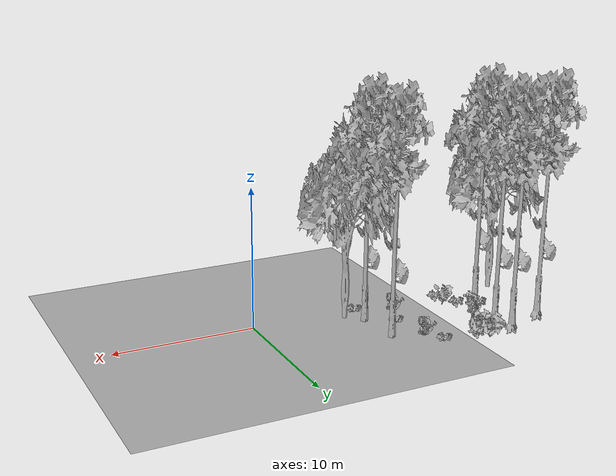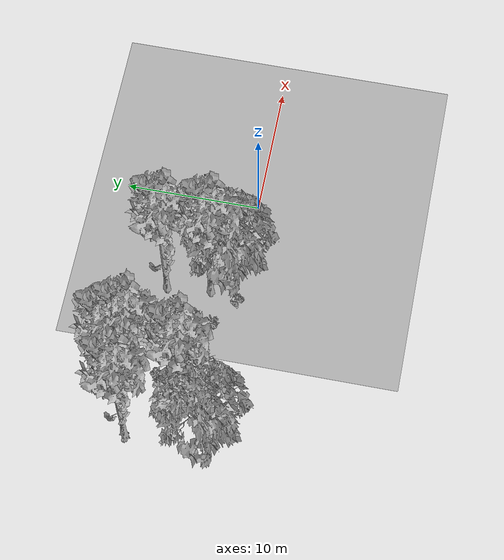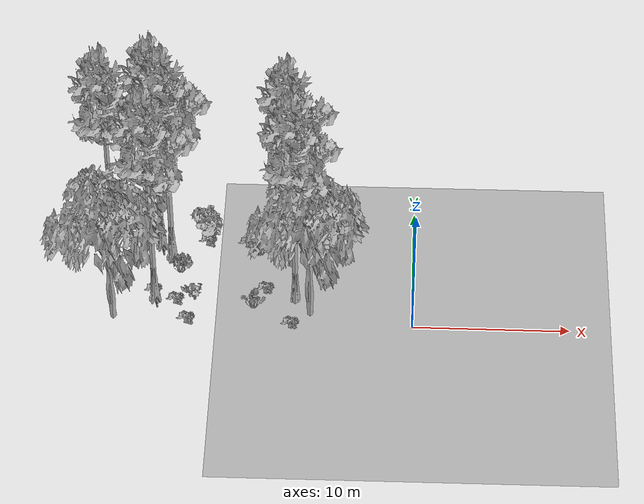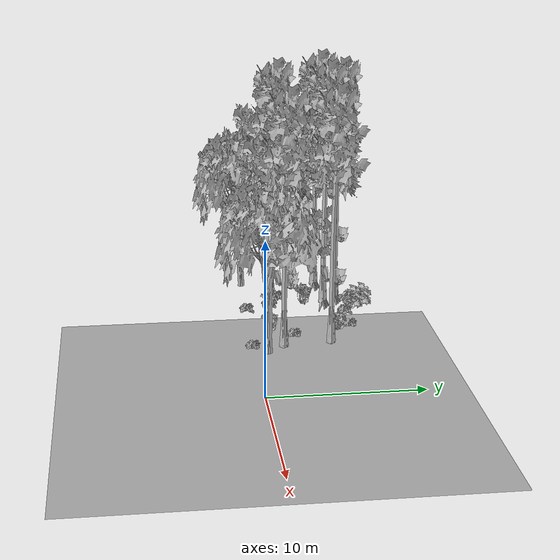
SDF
<sdf version="1.7">
 <world name="default">
  <model name="ground_plane">
   <static>1</static>
   <link name="link">
    <collision name="collision">
     <pose>-50 0 0 0 -0 0</pose>
     <geometry><plane><normal>0 0 1</normal><size>80 80</size></plane></geometry>
     <surface><contact><ode><min_depth>0.01</min_depth><max_vel>0</max_vel></ode></contact></surface>
    </collision>
    <visual name="grass">
     <cast_shadows>0</cast_shadows>
     <geometry>
      <mesh>
       <scale>0.46714285714285714 0.46714285714285714 0.1</scale>
       <uri>file://grass_plane/meshes/grass_plane.dae</uri>
      </mesh>
     </geometry>
    </visual>
   </link>
  </model>
  <model name="Tree 18">
   <static>1</static>
   <pose>-19.255456930846012 0.3580390568446177 0 1.57079 -0 0</pose>
   <link name="link">
    <collision name="collision">
     <geometry><mesh><scale>3.5 5 3.5</scale><uri>model://tree_2/meshes/tree_2.obj</uri></mesh></geometry>
    </collision>
    <visual name="visual">
     <geometry><mesh><scale>3.5 5 3.5</scale><uri>model://tree_2/meshes/tree_2.obj</uri></mesh></geometry>
    </visual>
   </link>
  </model>
  <model name="Tree 37">
   <static>1</static>
   <pose>-7.892119253496865 5.312296553941579 0 1.57079 -0 0</pose>
   <link name="link">
    <collision name="collision">
     <geometry><mesh><scale>3.5 5 3.5</scale><uri>model://tree_9/meshes/tree_9.obj</uri></mesh></geometry>
    </collision>
    <visual name="visual">
     <geometry><mesh><scale>3.5 5 3.5</scale><uri>model://tree_9/meshes/tree_9.obj</uri></mesh></geometry>
    </visual>
   </link>
  </model>
  <model name="Tree 175">
   <static>1</static>
   <pose>-7.563753588971178 2.1040092854238495 0 1.57079 -0 0</pose>
   <link name="link">
    <collision name="collision">
     <geometry><mesh><scale>3.5 5 3.5</scale><uri>model://tree_9/meshes/tree_9.obj</uri></mesh></geometry>
    </collision>
    <visual name="visual">
     <geometry><mesh><scale>3.5 5 3.5</scale><uri>model://tree_9/meshes/tree_9.obj</uri></mesh></geometry>
    </visual>
   </link>
  </model>
  <model name="Tree 207">
   <static>1</static>
   <pose>-6.672015179035903 0.9694824223845018 0 1.57079 -0 0</pose>
   <link name="link">
    <collision name="collision">
     <geometry><mesh><scale>3.5 5 3.5</scale><uri>model://tree_2/meshes/tree_2.obj</uri></mesh></geometry>
    </collision>
    <visual name="visual">
     <geometry><mesh><scale>3.5 5 3.5</scale><uri>model://tree_2/meshes/tree_2.obj</uri></mesh></geometry>
    </visual>
   </link>
  </model>
  <model name="Tree 248">
   <static>1</static>
   <pose>-16.539129121606507 6.989564903015108 0 1.57079 -0 0</pose>
   <link name="link">
    <collision name="collision">
     <geometry><mesh><scale>3.5 5 3.5</scale><uri>model://tree_9/meshes/tree_9.obj</uri></mesh></geometry>
    </collision>
    <visual name="visual">
     <geometry><mesh><scale>3.5 5 3.5</scale><uri>model://tree_9/meshes/tree_9.obj</uri></mesh></geometry>
    </visual>
   </link>
  </model>
  <model name="Tree 274">
   <static>1</static>
   <pose>-16.642777546276 2.3080700187895076 0 1.57079 -0 0</pose>
   <link name="link">
    <collision name="collision">
     <geometry><mesh><scale>3.5 5 3.5</scale><uri>model://tree_9/meshes/tree_9.obj</uri></mesh></geometry>
    </collision>
    <visual name="visual">
     <geometry><mesh><scale>3.5 5 3.5</scale><uri>model://tree_9/meshes/tree_9.obj</uri></mesh></geometry>
    </visual>
   </link>
  </model>
  <model name="Tree 459">
   <static>1</static>
   <pose>-15.783109543213712 6.00736953525935 0 1.57079 -0 0</pose>
   <link name="link">
    <collision name="collision">
     <geometry><mesh><scale>3.5 5 3.5</scale><uri>model://tree_9/meshes/tree_9.obj</uri></mesh></geometry>
    </collision>
    <visual name="visual">
     <geometry><mesh><scale>3.5 5 3.5</scale><uri>model://tree_9/meshes/tree_9.obj</uri></mesh></geometry>
    </visual>
   </link>
  </model>
  <model name="Tree 628">
   <static>1</static>
   <pose>-19.528178435553837 5.882567232968242 0 1.57079 -0 0</pose>
   <link name="link">
    <collision name="collision">
     <geometry><mesh><scale>3.5 5 3.5</scale><uri>model://tree_9/meshes/tree_9.obj</uri></mesh></geometry>
    </collision>
    <visual name="visual">
     <geometry><mesh><scale>3.5 5 3.5</scale><uri>model://tree_9/meshes/tree_9.obj</uri></mesh></geometry>
    </visual>
   </link>
  </model>
  <model name="Bush 23">
   <static>1</static>
   <pose>-14.066360384090249 1.9973744926889765 0 1.57079 -0 0</pose>
   <link name="link">
    <collision name="collision">
     <geometry><mesh><scale>2 2 2</scale><uri>model://bush_0/meshes/bush_0.obj</uri></mesh></geometry>
     <surface><contact><collide_without_contact>false</collide_without_contact></contact></surface>
    </collision>
    <visual name="visual">
     <geometry><mesh><scale>2 2 2</scale><uri>model://bush_0/meshes/bush_0.obj</uri></mesh></geometry>
    </visual>
   </link>
  </model>
  <model name="Bush 98">
   <static>1</static>
   <pose>-9.522795112355876 3.0536850580935564 0 1.57079 -0 0</pose>
   <link name="link">
    <collision name="collision">
     <geometry><mesh><scale>2 2 2</scale><uri>model://bush_2/meshes/bush_2.obj</uri></mesh></geometry>
     <surface><contact><collide_without_contact>false</collide_without_contact></contact></surface>
    </collision>
    <visual name="visual">
     <geometry><mesh><scale>2 2 2</scale><uri>model://bush_2/meshes/bush_2.obj</uri></mesh></geometry>
    </visual>
   </link>
  </model>
  <model name="Bush 125">
   <static>1</static>
   <pose>-15.126424895645815 4.401139598802587 0 1.57079 -0 0</pose>
   <link name="link">
    <collision name="collision">
     <geometry><mesh><scale>2 2 2</scale><uri>model://bush_4/meshes/bush_4.obj</uri></mesh></geometry>
     <surface><contact><collide_without_contact>false</collide_without_contact></contact></surface>
    </collision>
    <visual name="visual">
     <geometry><mesh><scale>2 2 2</scale><uri>model://bush_4/meshes/bush_4.obj</uri></mesh></geometry>
    </visual>
   </link>
  </model>
  <model name="Bush 152">
   <static>1</static>
   <pose>-10.89105026490714 7.118431934592309 0 1.57079 -0 0</pose>
   <link name="link">
    <collision name="collision">
     <geometry><mesh><scale>2 2 2</scale><uri>model://bush_2/meshes/bush_2.obj</uri></mesh></geometry>
     <surface><contact><collide_without_contact>false</collide_without_contact></contact></surface>
    </collision>
    <visual name="visual">
     <geometry><mesh><scale>2 2 2</scale><uri>model://bush_2/meshes/bush_2.obj</uri></mesh></geometry>
    </visual>
   </link>
  </model>
  <model name="Bush 161">
   <static>1</static>
   <pose>-14.496441043622536 0.32449319185488434 0 1.57079 -0 0</pose>
   <link name="link">
    <collision name="collision">
     <geometry><mesh><scale>2 2 2</scale><uri>model://bush_2/meshes/bush_2.obj</uri></mesh></geometry>
     <surface><contact><collide_without_contact>false</collide_without_contact></contact></surface>
    </collision>
    <visual name="visual">
     <geometry><mesh><scale>2 2 2</scale><uri>model://bush_2/meshes/bush_2.obj</uri></mesh></geometry>
    </visual>
   </link>
  </model>
  <model name="Bush 279">
   <static>1</static>
   <pose>-14.879798271863699 4.546364981578208 0 1.57079 -0 0</pose>
   <link name="link">
    <collision name="collision">
     <geometry><mesh><scale>2 2 2</scale><uri>model://bush_5/meshes/bush_5.obj</uri></mesh></geometry>
     <surface><contact><collide_without_contact>false</collide_without_contact></contact></surface>
    </collision>
    <visual name="visual">
     <geometry><mesh><scale>2 2 2</scale><uri>model://bush_5/meshes/bush_5.obj</uri></mesh></geometry>
    </visual>
   </link>
  </model>
  <model name="Bush 322">
   <static>1</static>
   <pose>-10.05297344630868 6.071813382118954 0 1.57079 -0 0</pose>
   <link name="link">
    <collision name="collision">
     <geometry><mesh><scale>2 2 2</scale><uri>model://bush_4/meshes/bush_4.obj</uri></mesh></geometry>
     <surface><contact><collide_without_contact>false</collide_without_contact></contact></surface>
    </collision>
    <visual name="visual">
     <geometry><mesh><scale>2 2 2</scale><uri>model://bush_4/meshes/bush_4.obj</uri></mesh></geometry>
    </visual>
   </link>
  </model>
  <model name="Bush 326">
   <static>1</static>
   <pose>-15.282039288823878 1.9832531854406383 0 1.57079 -0 0</pose>
   <link name="link">
    <collision name="collision">
     <geometry><mesh><scale>2 2 2</scale><uri>model://bush_2/meshes/bush_2.obj</uri></mesh></geometry>
     <surface><contact><collide_without_contact>false</collide_without_contact></contact></surface>
    </collision>
    <visual name="visual">
     <geometry><mesh><scale>2 2 2</scale><uri>model://bush_2/meshes/bush_2.obj</uri></mesh></geometry>
    </visual>
   </link>
  </model>
  <model name="Bush 337">
   <static>1</static>
   <pose>-13.819889351676878 8.231959690633197 0 1.57079 -0 0</pose>
   <link name="link">
    <collision name="collision">
     <geometry><mesh><scale>2 2 2</scale><uri>model://bush_1/meshes/bush_1.obj</uri></mesh></geometry>
     <surface><contact><collide_without_contact>false</collide_without_contact></contact></surface>
    </collision>
    <visual name="visual">
     <geometry><mesh><scale>2 2 2</scale><uri>model://bush_1/meshes/bush_1.obj</uri></mesh></geometry>
    </visual>
   </link>
  </model>
  <model name="Bush 353">
   <static>1</static>
   <pose>-16.7535208121613 2.7249904701946406 0 1.57079 -0 0</pose>
   <link name="link">
    <collision name="collision">
     <geometry><mesh><scale>2 2 2</scale><uri>model://bush_2/meshes/bush_2.obj</uri></mesh></geometry>
     <surface><contact><collide_without_contact>false</collide_without_contact></contact></surface>
    </collision>
    <visual name="visual">
     <geometry><mesh><scale>2 2 2</scale><uri>model://bush_2/meshes/bush_2.obj</uri></mesh></geometry>
    </visual>
   </link>
  </model>
  <model name="Bush 354">
   <static>1</static>
   <pose>-13.480861863542717 7.201963769452888 0 1.57079 -0 0</pose>
   <link name="link">
    <collision name="collision">
     <geometry><mesh><scale>2 2 2</scale><uri>model://bush_2/meshes/bush_2.obj</uri></mesh></geometry>
     <surface><contact><collide_without_contact>false</collide_without_contact></contact></surface>
    </collision>
    <visual name="visual">
     <geometry><mesh><scale>2 2 2</scale><uri>model://bush_2/meshes/bush_2.obj</uri></mesh></geometry>
    </visual>
   </link>
  </model>
  <model name="Bush 412">
   <static>1</static>
   <pose>-13.391465774383413 7.551599216716021 0 1.57079 -0 0</pose>
   <link name="link">
    <collision name="collision">
     <geometry><mesh><scale>2 2 2</scale><uri>model://bush_1/meshes/bush_1.obj</uri></mesh></geometry>
     <surface><contact><collide_without_contact>false</collide_without_contact></contact></surface>
    </collision>
    <visual name="visual">
     <geometry><mesh><scale>2 2 2</scale><uri>model://bush_1/meshes/bush_1.obj</uri></mesh></geometry>
    </visual>
   </link>
  </model>
  <model name="Bush 583">
   <static>1</static>
   <pose>-7.814127151382696 0.07751560149199577 0 1.57079 -0 0</pose>
   <link name="link">
    <collision name="collision">
     <geometry><mesh><scale>2 2 2</scale><uri>model://bush_2/meshes/bush_2.obj</uri></mesh></geometry>
     <surface><contact><collide_without_contact>false</collide_without_contact></contact></surface>
    </collision>
    <visual name="visual">
     <geometry><mesh><scale>2 2 2</scale><uri>model://bush_2/meshes/bush_2.obj</uri></mesh></geometry>
    </visual>
   </link>
  </model>
  <model name="Bush 609">
   <static>1</static>
   <pose>-10.273060932089038 1.4208808025082575 0 1.57079 -0 0</pose>
   <link name="link">
    <collision name="collision">
     <geometry><mesh><scale>2 2 2</scale><uri>model://bush_4/meshes/bush_4.obj</uri></mesh></geometry>
     <surface><contact><collide_without_contact>false</collide_without_contact></contact></surface>
    </collision>
    <visual name="visual">
     <geometry><mesh><scale>2 2 2</scale><uri>model://bush_4/meshes/bush_4.obj</uri></mesh></geometry>
    </visual>
   </link>
  </model>
 </world>
</sdf>
